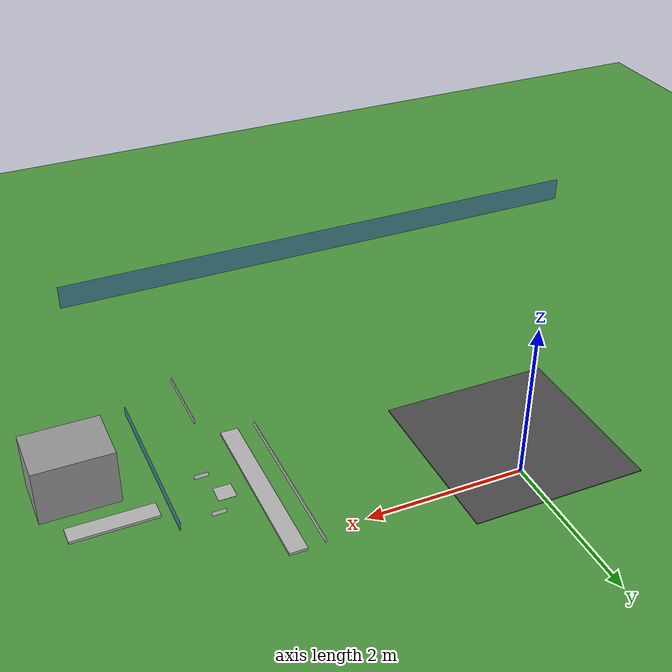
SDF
<sdf version="1.7">
 <world name="default">
  <model name="ground_plane">
   <static>1</static>
   <link name="link">
    <collision name="collision">
     <geometry><plane><normal>0 0 1</normal><size>100 100</size></plane></geometry>
     <surface><friction><ode><mu>100</mu><mu2>50</mu2></ode></friction></surface>
    </collision>
    <visual name="visual">
     <cast_shadows>0</cast_shadows>
     <geometry><plane><normal>0 0 1</normal><size>100 100</size></plane></geometry>
     <material>
      <script><uri>file://media/materials/scripts/gazebo.material</uri><name>Gazebo/Grass</name></script>
     </material>
    </visual>
   </link>
  </model>
  <model name="sidewalk_southeast">
   <static>1</static>
   <pose>2.91909 -0.902657 0.05 0 -0 0</pose>
   <link name="link">
    <collision name="collision"><geometry><box><size>0.222222 2.22222 0.033333</size></box></geometry></collision>
    <visual name="visual">
     <geometry><box><size>0.222222 2.22222 0.033333</size></box></geometry>
     <material>
      <script><uri>file://media/materials/scripts/gazebo.material</uri><name>Gazebo/Concrete</name></script>
     </material>
    </visual>
   </link>
  </model>
  <model name="wall_parking_east">
   <static>1</static>
   <pose>2.59525 -0.908267 0.083333 0 -0 0</pose>
   <link name="link">
    <collision name="collision">
     <geometry><box><size>0.011111 2.21632 0.0555559</size></box></geometry>
    </collision>
    <visual name="visual">
     <geometry><box><size>0.011111 2.21632 0.0555559</size></box></geometry>
     <material>
      <script><uri>file://media/materials/scripts/gazebo.material</uri><name>Gazebo/White</name></script>
     </material>
    </visual>
   </link>
  </model>
  <model name="apartment_east_2">
   <static>1</static>
   <pose>4.99983 -0.994087 1 0 -0 0</pose>
   <link name="link">
    <collision name="collision">
     <geometry><box><size>0.888889 0.666666 0.666666</size></box></geometry>
    </collision>
    <visual name="visual">
     <geometry><box><size>0.888889 0.666666 0.666666</size></box></geometry>
     <material>
      <script><uri>file://media/materials/scripts/gazebo.material</uri><name>Gazebo/Grey</name></script>
     </material>
    </visual>
   </link>
  </model>
  <model name="asphalt_plane">
   <static>1</static>
   <link name="link">
    <collision name="collision"><geometry><box><size>2.22222 2.22222 0.011111</size></box></geometry></collision>
    <visual name="visual">
     <cast_shadows>0</cast_shadows>
     <geometry><box><size>2.22222 2.22222 0.011111</size></box></geometry>
     <material>
      <script>
       <uri>model://asphalt_plane/materials/scripts</uri>
       <uri>model://asphalt_plane/materials/textures</uri>
       <name>vrc/asphalt</name>
      </script>
     </material>
    </visual>
   </link>
   <pose>-0.18955 -0.540283 0 0 -0 0</pose>
  </model>
  <model name="turtlebot_spawn_area_south">
   <static>1</static>
   <pose>3.33333 -1 0.053333 0 -0 0</pose>
   <link name="link">
    <collision name="collision">
     <geometry><box><size>0.222222 0.222222 0.002222</size></box></geometry>
    </collision>
    <visual name="visual">
     <geometry><box><size>0.222222 0.222222 0.002222</size></box></geometry>
     <material>
      <script><uri>file://media/materials/scripts/gazebo.material</uri><name>Gazebo/Concrete</name></script>
     </material>
    </visual>
   </link>
  </model>
  <model name="fence_east_outer">
   <static>1</static>
   <pose>4 -1.66667 0.166667 0 -0 0</pose>
   <link name="link">
    <collision name="collision"><geometry><box><size>0.011111 2.22222 0.111111</size></box></geometry></collision>
    <visual name="visual">
     <geometry><box><size>0.011111 2.22222 0.111111</size></box></geometry>
     <material>
      <script><uri>file://media/materials/scripts/gazebo.material</uri><name>Gazebo/BlueTransparent</name></script>
     </material>
    </visual>
   </link>
  </model>
  <model name="fence_south_outer">
   <static>1</static>
   <pose>0 -5.66667 0.166667 0 -0 0</pose>
   <link name="link">
    <collision name="collision"><geometry><box><size>8.33333 0.033333 0.333333</size></box></geometry></collision>
    <visual name="visual">
     <geometry><box><size>8.33333 0.033333 0.333333</size></box></geometry>
     <material>
      <script><uri>file://media/materials/scripts/gazebo.material</uri><name>Gazebo/BlueTransparent</name></script>
     </material>
    </visual>
   </link>
  </model>
  <model name="wall_parking_north_clone_clone_3_clone">
   <static>1</static>
   <pose>3.25932 -2.79957 0.083333 0 0 -1.56833</pose>
   <link name="link">
    <collision name="collision">
     <geometry><box><size>0.968374 0.011111 0.0555559</size></box></geometry>
    </collision>
    <visual name="visual">
     <geometry><box><size>0.968374 0.011111 0.0555559</size></box></geometry>
     <material>
      <script><uri>file://media/materials/scripts/gazebo.material</uri><name>Gazebo/White</name></script>
     </material>
    </visual>
   </link>
  </model>
  <model name="wall_parking_north_clone_clone_2_clone_clone">
   <static>1</static>
   <pose>3.4976 -1.34788 0.083333 0 -0 0</pose>
   <link name="link">
    <collision name="collision">
     <geometry><box><size>0.172148 0.011111 0.0555559</size></box></geometry>
    </collision>
    <visual name="visual">
     <geometry><box><size>0.172148 0.011111 0.0555559</size></box></geometry>
     <material>
      <script><uri>file://media/materials/scripts/gazebo.material</uri><name>Gazebo/White</name></script>
     </material>
    </visual>
   </link>
  </model>
  <model name="wall_parking_north_clone_clone_2_clone_clone_0">
   <static>1</static>
   <pose>3.50837 -0.687957 0.083333 0 -0 0</pose>
   <link name="link">
    <collision name="collision">
     <geometry><box><size>0.172148 0.011111 0.0555559</size></box></geometry>
    </collision>
    <visual name="visual">
     <geometry><box><size>0.172148 0.011111 0.0555559</size></box></geometry>
     <material>
      <script><uri>file://media/materials/scripts/gazebo.material</uri><name>Gazebo/White</name></script>
     </material>
    </visual>
   </link>
  </model>
  <model name="sidewalk_northeast_clone">
   <static>1</static>
   <pose>4.63603 -1.02803 0.05 0 -0 0</pose>
   <link name="link">
    <collision name="collision"><geometry><box><size>1.04892 0.222222 0.033333</size></box></geometry></collision>
    <visual name="visual">
     <geometry><box><size>1.04892 0.222222 0.033333</size></box></geometry>
     <material>
      <script><uri>file://media/materials/scripts/gazebo.material</uri><name>Gazebo/Concrete</name></script>
     </material>
    </visual>
   </link>
  </model>
 </world>
</sdf>
